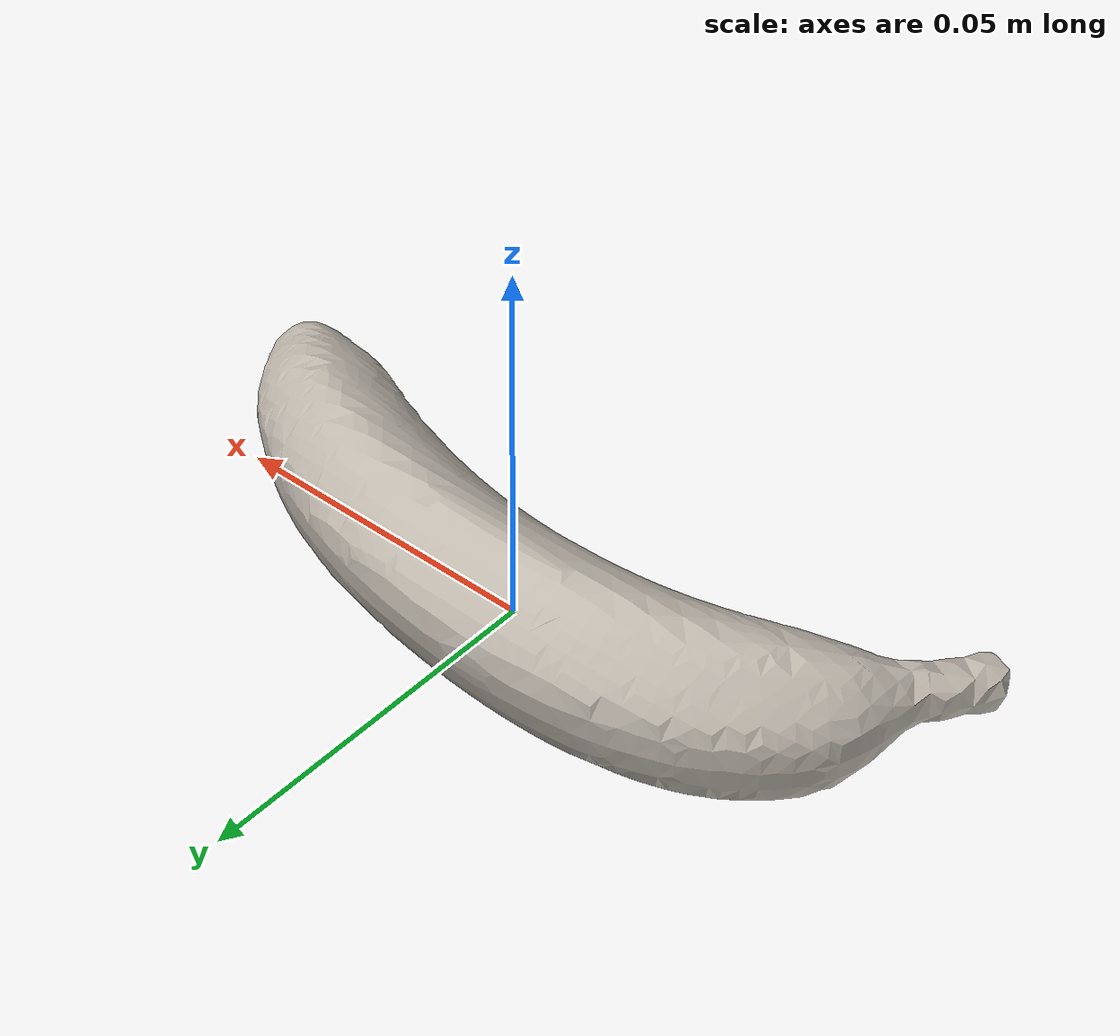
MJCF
<mujoco model="banana">
  <asset>
    <mesh file="meshes/banana/banana.stl" name="banana_mesh" scale="0.6 0.6 0.6"/>
    <mesh file="meshes/banana/banana_hull_1.stl" name="m1" scale="0.6 0.6 0.6"/>
    <mesh file="meshes/banana/banana_hull_2.stl" name="m2" scale="0.6 0.6 0.6"/>
    <mesh file="meshes/banana/banana_hull_3.stl" name="m3" scale="0.6 0.6 0.6"/>
    <texture file="../textures/lemon.png" name="tex-banana"/>
    <material name="banana" reflectance="0.7" texrepeat="5 5" texture="tex-banana" texuniform="true"/>
  </asset>
  <worldbody>
    <body>
      <body name="visual">
        <geom pos="0 0 0" mesh="banana_mesh" type="mesh" material="banana"  conaffinity="0" contype="0" group="0" mass="0.0001"/>
        <geom pos="0 0 0" mesh="banana_mesh" type="mesh" material="banana"  conaffinity="0" contype="0" group="1" mass="0.0001"/>
      </body>
      <site rgba="0 0 0 0" size="0.005" pos="0 0 -0.06" name="bottom_site"/>
      <site rgba="0 0 0 0" size="0.005" pos="0 0 0.04" name="top_site"/>
      <site rgba="0 0 0 0" size="0.005" pos="0.025 0.025 0" name="horizontal_radius_site"/>
    </body>
  </worldbody>
</mujoco>
